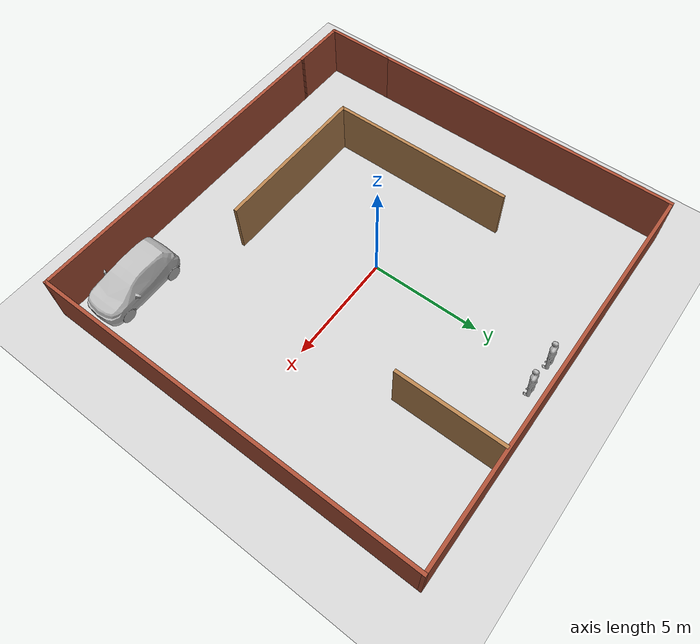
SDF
<sdf version="1.6">
 <world name="default">
  <light name="sun" type="directional">
   <pose>0 0 10 0 -0 0</pose>
   <diffuse>0.8 0.8 0.8 1</diffuse>
   <specular>0.2 0.2 0.2 1</specular>
   <attenuation>
    <range>1000</range>
    <constant>0.9</constant>
    <linear>0.01</linear>
    <quadratic>0.001</quadratic>
   </attenuation>
   <direction>-0.5 0.1 -0.9</direction>
  </light>
  <model name="ground_plane">
   <static>1</static>
   <link name="link">
    <collision name="collision">
     <geometry><plane><normal>0 0 1</normal><size>100 100</size></plane></geometry>
     <surface><friction><ode><mu>100</mu><mu2>50</mu2></ode></friction></surface>
    </collision>
    <visual name="visual">
     <cast_shadows>0</cast_shadows>
     <geometry><plane><normal>0 0 1</normal><size>100 100</size></plane></geometry>
     <material>
      <script><uri>file://media/materials/scripts/gazebo.material</uri><name>Gazebo/Grey</name></script>
     </material>
    </visual>
   </link>
  </model>
  <gravity>0 0 -9.8</gravity>
  <magnetic_field>6e-06 2.3e-05 -4.2e-05</magnetic_field>
  <atmosphere type="adiabatic"/>
  <physics name="default_physics" default="0" type="ode">
   <max_step_size>0.001</max_step_size>
   <real_time_factor>1</real_time_factor>
   <real_time_update_rate>1000</real_time_update_rate>
  </physics>
  <scene><ambient>0.4 0.4 0.4 1</ambient><background>0.7 0.7 0.7 1</background><shadows>1</shadows></scene>
  <spherical_coordinates>
   <surface_model>EARTH_WGS84</surface_model>
   <latitude_deg>0</latitude_deg>
   <longitude_deg>0</longitude_deg>
   <elevation>0</elevation>
   <heading_deg>0</heading_deg>
  </spherical_coordinates>
  <model name="testground">
   <pose>0.48046 -0.014198 0 0 -0 0</pose>
   <link name="Wall_10">
    <collision name="Wall_10_Collision">
     <geometry><box><size>3.325 0.15 2.5</size></box></geometry>
     <pose>0 0 1.25 0 -0 0</pose>
    </collision>
    <visual name="Wall_10_Visual">
     <pose>0 0 1.25 0 -0 0</pose>
     <geometry><box><size>3.325 0.15 2.5</size></box></geometry>
     <material>
      <script><uri>file://media/materials/scripts/gazebo.material</uri><name>Gazebo/Bricks</name></script>
      <ambient>1 1 1 1</ambient>
     </material>
     <meta><layer>0</layer></meta>
    </visual>
    <pose>-8.925 -7.20622 0 0 0 -1.5708</pose>
   </link>
   <link name="Wall_20">
    <collision name="Wall_20_Collision">
     <geometry><box><size>2.65 0.15 2.5</size></box></geometry>
     <pose>0 0 1.25 0 -0 0</pose>
    </collision>
    <visual name="Wall_20_Visual">
     <pose>0 0 1.25 0 -0 0</pose>
     <geometry><box><size>2.65 0.15 2.5</size></box></geometry>
     <material>
      <script><uri>file://media/materials/scripts/gazebo.material</uri><name>Gazebo/Bricks</name></script>
      <ambient>1 1 1 1</ambient>
     </material>
     <meta><layer>0</layer></meta>
    </visual>
    <pose>-7.675 -8.79307 0 0 -0 0.000521</pose>
   </link>
   <link name="Wall_23">
    <collision name="Wall_23_Collision">
     <geometry><box><size>8.5 0.15 2.5</size></box></geometry>
     <pose>0 0 1.25 0 -0 0</pose>
    </collision>
    <visual name="Wall_23_Visual">
     <pose>0 0 1.25 0 -0 0</pose>
     <geometry><box><size>8.5 0.15 2.5</size></box></geometry>
     <material>
      <script><uri>file://media/materials/scripts/gazebo.material</uri><name>Gazebo/Wood</name></script>
      <ambient>1 1 1 1</ambient>
     </material>
     <meta><layer>0</layer></meta>
    </visual>
    <pose>-5.11511 -1.12555 0 0 0 -1.5708</pose>
   </link>
   <link name="Wall_28">
    <collision name="Wall_28_Collision">
     <geometry><box><size>7.25 0.15 2.5</size></box></geometry>
     <pose>0 0 1.25 0 -0 0</pose>
    </collision>
    <visual name="Wall_28_Visual">
     <pose>0 0 1.25 0 -0 0</pose>
     <geometry><box><size>7.25 0.15 2.5</size></box></geometry>
     <material>
      <script><uri>file://media/materials/scripts/gazebo.material</uri><name>Gazebo/Wood</name></script>
      <ambient>1 1 1 1</ambient>
     </material>
     <meta><layer>0</layer></meta>
    </visual>
    <pose>-1.56511 -5.30055 0 0 -0 0</pose>
   </link>
   <link name="Wall_30">
    <collision name="Wall_30_Collision">
     <geometry><box><size>4.75 0.15 2.5</size></box></geometry>
     <pose>0 0 1.25 0 -0 0</pose>
    </collision>
    <visual name="Wall_30_Visual">
     <pose>0 0 1.25 0 -0 0</pose>
     <geometry><box><size>4.75 0.15 2.5</size></box></geometry>
     <material>
      <script><uri>file://media/materials/scripts/gazebo.material</uri><name>Gazebo/Wood</name></script>
      <ambient>1 1 1 1</ambient>
     </material>
     <meta><layer>0</layer></meta>
    </visual>
    <pose>3.92787 6.41819 0 0 0 -1.5708</pose>
   </link>
   <link name="Wall_4">
    <collision name="Wall_4_Collision">
     <geometry><box><size>15.5 0.15 2.5</size></box></geometry>
     <pose>0 0 1.25 0 -0 0</pose>
    </collision>
    <visual name="Wall_4_Visual">
     <pose>0 0 1.25 0 -0 0</pose>
     <geometry><box><size>15.5 0.15 2.5</size></box></geometry>
     <material>
      <script><uri>file://media/materials/scripts/gazebo.material</uri><name>Gazebo/Bricks</name></script>
      <ambient>1 1 1 1</ambient>
     </material>
     <meta><layer>0</layer></meta>
    </visual>
    <pose>1.25 -8.7962 0 0 0 -0.000493</pose>
   </link>
   <link name="Wall_5">
    <collision name="Wall_5_Collision">
     <geometry><box><size>17.75 0.15 2.5</size></box></geometry>
     <pose>0 0 1.25 0 -0 0</pose>
    </collision>
    <visual name="Wall_5_Visual">
     <pose>0 0 1.25 0 -0 0</pose>
     <geometry><box><size>17.75 0.15 2.5</size></box></geometry>
     <material>
      <script><uri>file://media/materials/scripts/gazebo.material</uri><name>Gazebo/Bricks</name></script>
      <ambient>1 1 1 1</ambient>
     </material>
     <meta><layer>0</layer></meta>
    </visual>
    <pose>8.925 1.8e-05 0 0 -0 1.5708</pose>
   </link>
   <link name="Wall_6">
    <collision name="Wall_6_Collision">
     <geometry><box><size>18 0.15 2.5</size></box></geometry>
     <pose>0 0 1.25 0 -0 0</pose>
    </collision>
    <visual name="Wall_6_Visual">
     <pose>0 0 1.25 0 -0 0</pose>
     <geometry><box><size>18 0.15 2.5</size></box></geometry>
     <material>
      <script><uri>file://media/materials/scripts/gazebo.material</uri><name>Gazebo/Bricks</name></script>
      <ambient>1 1 1 1</ambient>
     </material>
     <meta><layer>0</layer></meta>
    </visual>
    <pose>1e-06 8.80002 0 0 -0 3.14159</pose>
   </link>
   <link name="Wall_7">
    <collision name="Wall_7_Collision">
     <geometry><box><size>14.5687 0.15 2.5</size></box></geometry>
     <pose>0 0 1.25 0 -0 0</pose>
    </collision>
    <visual name="Wall_7_Visual">
     <pose>0 0 1.25 0 -0 0</pose>
     <geometry><box><size>14.5687 0.15 2.5</size></box></geometry>
     <material>
      <script><uri>file://media/materials/scripts/gazebo.material</uri><name>Gazebo/Bricks</name></script>
      <ambient>1 1 1 1</ambient>
     </material>
     <meta><layer>0</layer></meta>
    </visual>
    <pose>-8.925 1.59065 0 0 0 -1.5708</pose>
   </link>
   <static>1</static>
  </model>
  <model name="hatchback_blue">
   <static>1</static>
   <link name="link">
    <collision name="collision">
     <pose>0 0 0 0 -0 1.5708</pose>
     <geometry>
      <mesh><scale>0.0254 0.0254 0.0254</scale><uri>model://hatchback_blue/meshes/hatchback.obj</uri></mesh>
     </geometry>
    </collision>
    <visual name="visual">
     <pose>0 0 0 0 -0 1.5708</pose>
     <geometry>
      <mesh><scale>0.0254 0.0254 0.0254</scale><uri>model://hatchback_blue/meshes/hatchback.obj</uri></mesh>
     </geometry>
    </visual>
   </link>
   <pose>6.47061 -7.41595 0 0 -0 0</pose>
  </model>
  <model name="person_standing">
   <link name="link">
    <inertial>
     <pose>0 -0.1 0.95 0 -0 0</pose>
     <mass>80</mass>
     <inertia><ixx>24.88</ixx><ixy>0</ixy><ixz>0</ixz><iyy>25.73</iyy><iyz>0</iyz><izz>2.48</izz></inertia>
    </inertial>
    <collision name="bottom">
     <pose>0 -0.1 0.01 0 -0 0</pose>
     <geometry><box><size>0.5 0.35 0.02</size></box></geometry>
    </collision>
    <collision name="person">
     <pose>0 0 0.02 0.04 -0 0</pose>
     <geometry><mesh><uri>model://person_standing/meshes/standing.dae</uri></mesh></geometry>
    </collision>
    <visual name="visual">
     <pose>0 0 0.02 0.04 -0 0</pose>
     <geometry><mesh><uri>model://person_standing/meshes/standing.dae</uri></mesh></geometry>
    </visual>
   </link>
   <pose>1.11351 8.1593 -1e-06 -1e-06 1e-06 -0.000272</pose>
  </model>
  <model name="person_standing_0">
   <link name="link">
    <inertial>
     <pose>0 -0.1 0.95 0 -0 0</pose>
     <mass>80</mass>
     <inertia><ixx>24.88</ixx><ixy>0</ixy><ixz>0</ixz><iyy>25.73</iyy><iyz>0</iyz><izz>2.48</izz></inertia>
    </inertial>
    <collision name="bottom">
     <pose>0 -0.1 0.01 0 -0 0</pose>
     <geometry><box><size>0.5 0.35 0.02</size></box></geometry>
    </collision>
    <collision name="person">
     <pose>0 0 0.02 0.04 -0 0</pose>
     <geometry><mesh><uri>model://person_standing/meshes/standing.dae</uri></mesh></geometry>
    </collision>
    <visual name="visual">
     <pose>0 0 0.02 0.04 -0 0</pose>
     <geometry><mesh><uri>model://person_standing/meshes/standing.dae</uri></mesh></geometry>
    </visual>
   </link>
   <pose>-0.324848 8.16904 0 -0 1e-06 -0.000133</pose>
  </model>
 </world>
</sdf>
